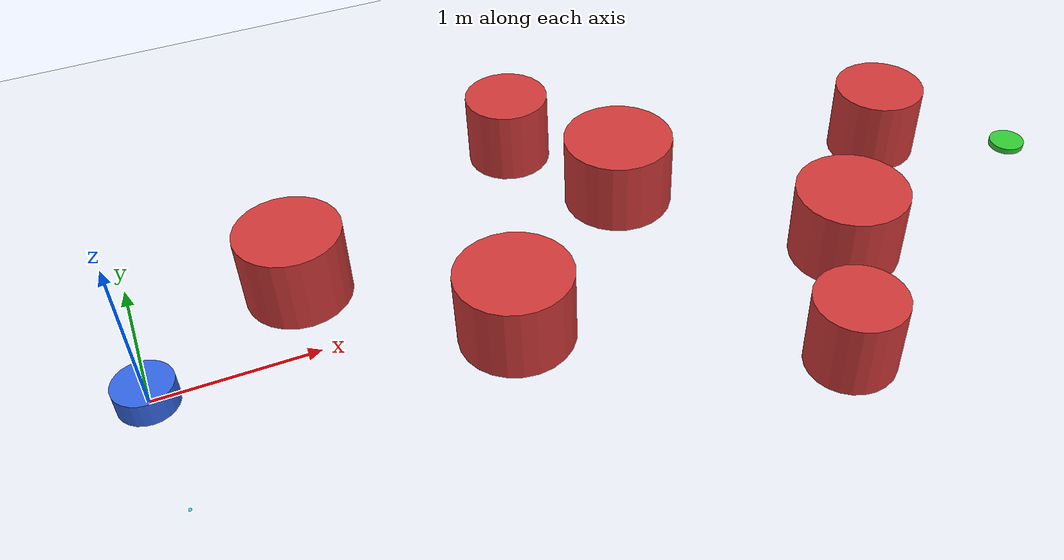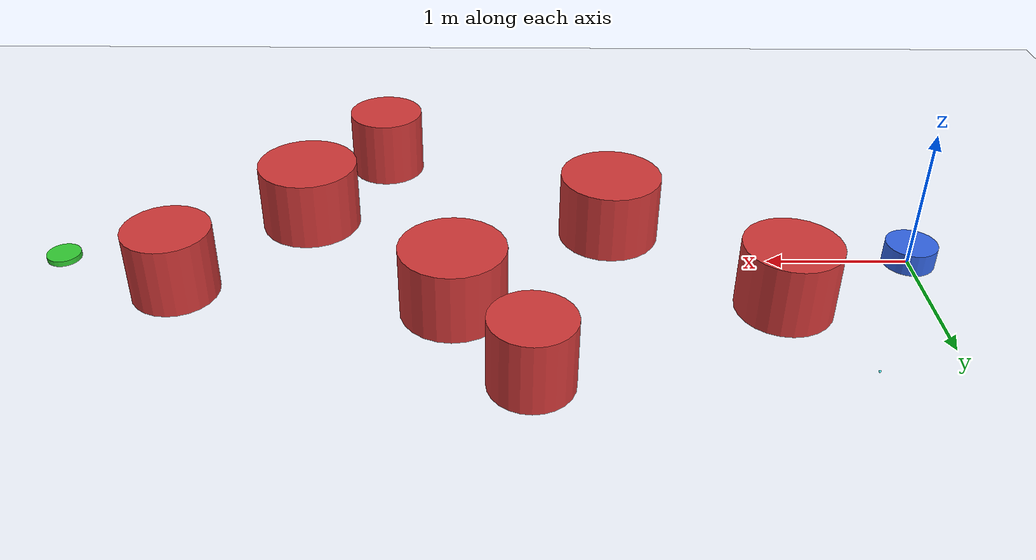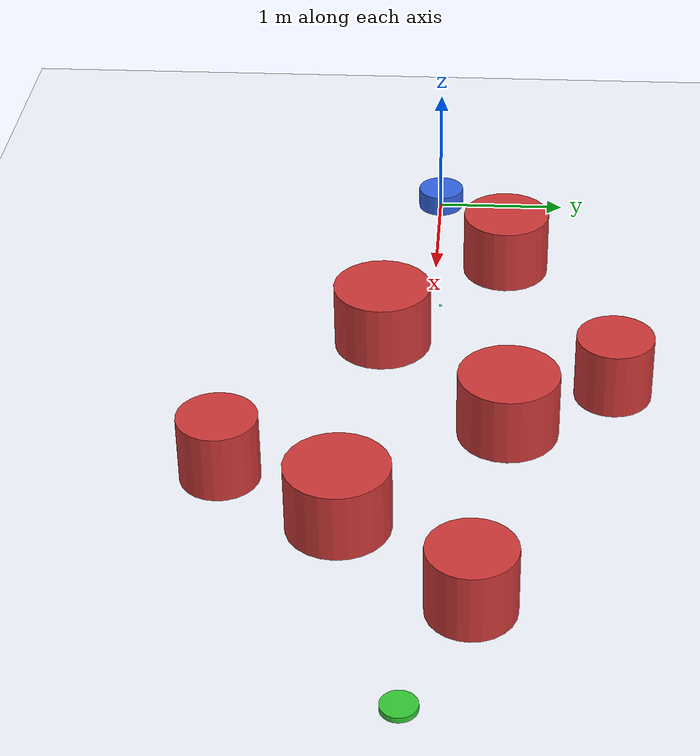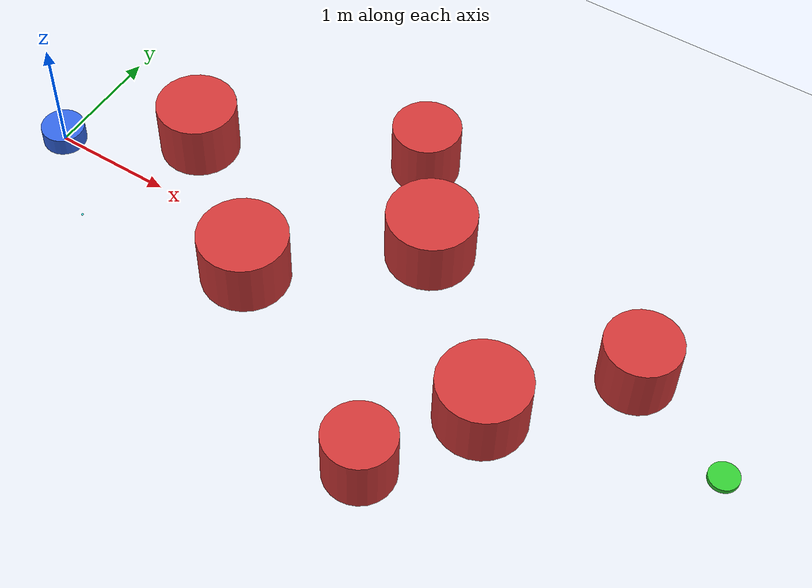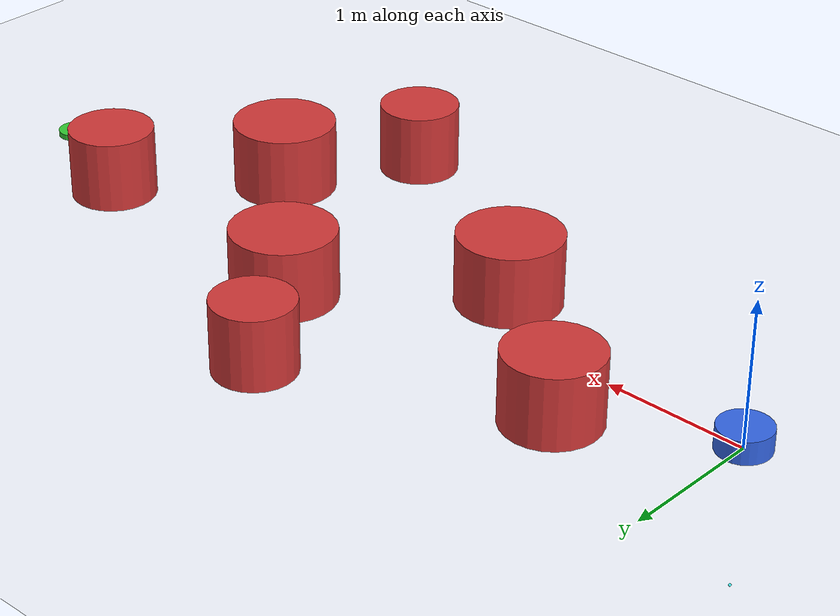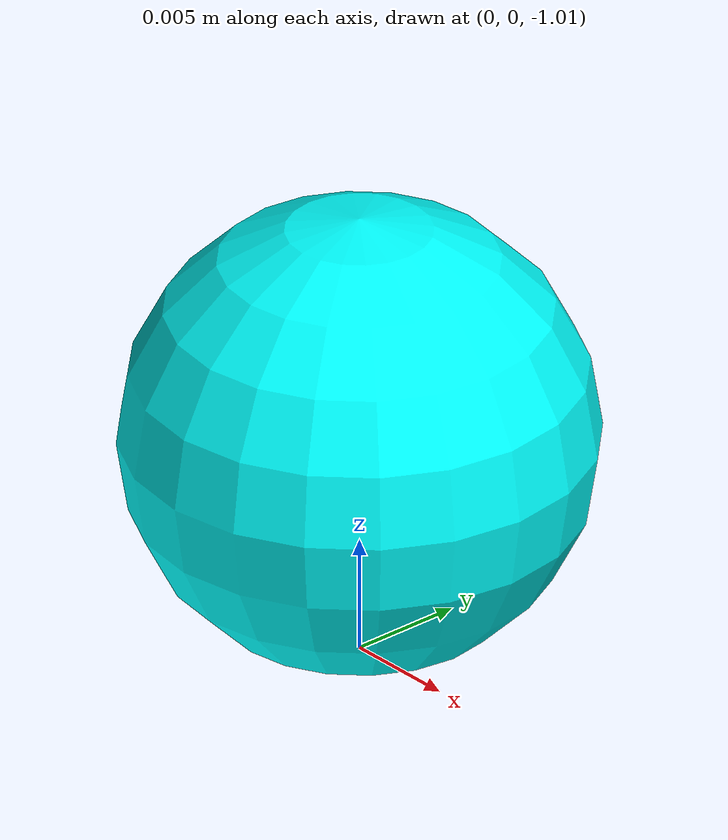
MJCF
<mujoco model="dense_scene">
  <option timestep="0.02" gravity="0 0 -9.81"/>

  <visual>
    <headlight ambient="0.6 0.6 0.6" diffuse="0.8 0.8 0.8" specular="0.2 0.2 0.2"/>
  </visual>

  <worldbody>
    <!-- 地面 -->
    <geom name="floor" type="plane" size="8 8 0.1" rgba="0.94 0.94 0.94 1"/>

    <!-- 机器人：先继续用一个蓝色圆柱占位 -->
    <body name="robot" pos="0 0 0.08">
      <freejoint/>
      <geom name="robot_body" type="cylinder" size="0.18 0.08" rgba="0.2 0.4 0.9 1"/>
    </body>

    <!-- goal 标记 -->
    <body name="goal_marker" pos="6.0 0.0 0.02">
      <geom type="cylinder" size="0.12 0.02" rgba="0.2 0.8 0.2 1"/>
    </body>

    <!-- dense 场景障碍物：把二维圆障碍翻成竖直圆柱 -->
    <body name="obs1" pos="1.0 0.55 0.25">
      <geom type="cylinder" size="0.33 0.25" rgba="0.82 0.22 0.22 1"/>
    </body>

    <body name="obs2" pos="2.1 -0.35 0.25">
      <geom type="cylinder" size="0.36 0.25" rgba="0.82 0.22 0.22 1"/>
    </body>

    <body name="obs3" pos="3.2 0.60 0.25">
      <geom type="cylinder" size="0.36 0.25" rgba="0.82 0.22 0.22 1"/>
    </body>

    <body name="obs4" pos="4.3 -0.50 0.25">
      <geom type="cylinder" size="0.36 0.25" rgba="0.82 0.22 0.22 1"/>
    </body>

    <body name="obs5" pos="5.1 0.40 0.25">
      <geom type="cylinder" size="0.30 0.25" rgba="0.82 0.22 0.22 1"/>
    </body>

    <body name="obs6" pos="2.7 1.35 0.25">
      <geom type="cylinder" size="0.28 0.25" rgba="0.82 0.22 0.22 1"/>
    </body>

    <body name="obs7" pos="3.8 -1.35 0.25">
      <geom type="cylinder" size="0.28 0.25" rgba="0.82 0.22 0.22 1"/>
    </body>

<body name="pred_best_0" mocap="true" pos="0 0 -1">
    <geom type="sphere" size="0.0100" rgba="0.00 1.00 1.00 1.00" contype="0" conaffinity="0"/>
</body>
<body name="pred_best_1" mocap="true" pos="0 0 -1">
    <geom type="sphere" size="0.0100" rgba="0.00 1.00 1.00 1.00" contype="0" conaffinity="0"/>
</body>
<body name="pred_best_2" mocap="true" pos="0 0 -1">
    <geom type="sphere" size="0.0100" rgba="0.00 1.00 1.00 1.00" contype="0" conaffinity="0"/>
</body>
<body name="pred_best_3" mocap="true" pos="0 0 -1">
    <geom type="sphere" size="0.0100" rgba="0.00 1.00 1.00 1.00" contype="0" conaffinity="0"/>
</body>
<body name="pred_best_4" mocap="true" pos="0 0 -1">
    <geom type="sphere" size="0.0100" rgba="0.00 1.00 1.00 1.00" contype="0" conaffinity="0"/>
</body>
<body name="pred_best_5" mocap="true" pos="0 0 -1">
    <geom type="sphere" size="0.0100" rgba="0.00 1.00 1.00 1.00" contype="0" conaffinity="0"/>
</body>
<body name="pred_best_6" mocap="true" pos="0 0 -1">
    <geom type="sphere" size="0.0100" rgba="0.00 1.00 1.00 1.00" contype="0" conaffinity="0"/>
</body>
<body name="pred_best_7" mocap="true" pos="0 0 -1">
    <geom type="sphere" size="0.0100" rgba="0.00 1.00 1.00 1.00" contype="0" conaffinity="0"/>
</body>
<body name="pred_best_8" mocap="true" pos="0 0 -1">
    <geom type="sphere" size="0.0100" rgba="0.00 1.00 1.00 1.00" contype="0" conaffinity="0"/>
</body>
<body name="pred_best_9" mocap="true" pos="0 0 -1">
    <geom type="sphere" size="0.0100" rgba="0.00 1.00 1.00 1.00" contype="0" conaffinity="0"/>
</body>
<body name="pred_best_10" mocap="true" pos="0 0 -1">
    <geom type="sphere" size="0.0100" rgba="0.00 1.00 1.00 1.00" contype="0" conaffinity="0"/>
</body>
<body name="pred_best_11" mocap="true" pos="0 0 -1">
    <geom type="sphere" size="0.0100" rgba="0.00 1.00 1.00 1.00" contype="0" conaffinity="0"/>
</body>
<body name="pred_best_12" mocap="true" pos="0 0 -1">
    <geom type="sphere" size="0.0100" rgba="0.00 1.00 1.00 1.00" contype="0" conaffinity="0"/>
</body>
<body name="pred_best_13" mocap="true" pos="0 0 -1">
    <geom type="sphere" size="0.0100" rgba="0.00 1.00 1.00 1.00" contype="0" conaffinity="0"/>
</body>
<body name="pred_best_14" mocap="true" pos="0 0 -1">
    <geom type="sphere" size="0.0100" rgba="0.00 1.00 1.00 1.00" contype="0" conaffinity="0"/>
</body>
<body name="pred_best_15" mocap="true" pos="0 0 -1">
    <geom type="sphere" size="0.0100" rgba="0.00 1.00 1.00 1.00" contype="0" conaffinity="0"/>
</body>
<body name="pred_best_16" mocap="true" pos="0 0 -1">
    <geom type="sphere" size="0.0100" rgba="0.00 1.00 1.00 1.00" contype="0" conaffinity="0"/>
</body>
<body name="pred_best_17" mocap="true" pos="0 0 -1">
    <geom type="sphere" size="0.0100" rgba="0.00 1.00 1.00 1.00" contype="0" conaffinity="0"/>
</body>
<body name="pred_best_18" mocap="true" pos="0 0 -1">
    <geom type="sphere" size="0.0100" rgba="0.00 1.00 1.00 1.00" contype="0" conaffinity="0"/>
</body>
<body name="pred_best_19" mocap="true" pos="0 0 -1">
    <geom type="sphere" size="0.0100" rgba="0.00 1.00 1.00 1.00" contype="0" conaffinity="0"/>
</body>
<body name="pred_best_20" mocap="true" pos="0 0 -1">
    <geom type="sphere" size="0.0100" rgba="0.00 1.00 1.00 1.00" contype="0" conaffinity="0"/>
</body>
<body name="pred_best_21" mocap="true" pos="0 0 -1">
    <geom type="sphere" size="0.0100" rgba="0.00 1.00 1.00 1.00" contype="0" conaffinity="0"/>
</body>
<body name="pred_best_22" mocap="true" pos="0 0 -1">
    <geom type="sphere" size="0.0100" rgba="0.00 1.00 1.00 1.00" contype="0" conaffinity="0"/>
</body>
<body name="pred_best_23" mocap="true" pos="0 0 -1">
    <geom type="sphere" size="0.0100" rgba="0.00 1.00 1.00 1.00" contype="0" conaffinity="0"/>
</body>
<body name="pred_best_24" mocap="true" pos="0 0 -1">
    <geom type="sphere" size="0.0100" rgba="0.00 1.00 1.00 1.00" contype="0" conaffinity="0"/>
</body>
<body name="pred_best_25" mocap="true" pos="0 0 -1">
    <geom type="sphere" size="0.0100" rgba="0.00 1.00 1.00 1.00" contype="0" conaffinity="0"/>
</body>
<body name="pred_best_26" mocap="true" pos="0 0 -1">
    <geom type="sphere" size="0.0100" rgba="0.00 1.00 1.00 1.00" contype="0" conaffinity="0"/>
</body>
<body name="pred_best_27" mocap="true" pos="0 0 -1">
    <geom type="sphere" size="0.0100" rgba="0.00 1.00 1.00 1.00" contype="0" conaffinity="0"/>
</body>
<body name="pred_best_28" mocap="true" pos="0 0 -1">
    <geom type="sphere" size="0.0100" rgba="0.00 1.00 1.00 1.00" contype="0" conaffinity="0"/>
</body>
<body name="pred_best_29" mocap="true" pos="0 0 -1">
    <geom type="sphere" size="0.0100" rgba="0.00 1.00 1.00 1.00" contype="0" conaffinity="0"/>
</body>
<body name="pred_best_30" mocap="true" pos="0 0 -1">
    <geom type="sphere" size="0.0100" rgba="0.00 1.00 1.00 1.00" contype="0" conaffinity="0"/>
</body>
<body name="pred_best_31" mocap="true" pos="0 0 -1">
    <geom type="sphere" size="0.0100" rgba="0.00 1.00 1.00 1.00" contype="0" conaffinity="0"/>
</body>
<body name="pred_best_32" mocap="true" pos="0 0 -1">
    <geom type="sphere" size="0.0100" rgba="0.00 1.00 1.00 1.00" contype="0" conaffinity="0"/>
</body>
<body name="pred_best_33" mocap="true" pos="0 0 -1">
    <geom type="sphere" size="0.0100" rgba="0.00 1.00 1.00 1.00" contype="0" conaffinity="0"/>
</body>
<body name="pred_best_34" mocap="true" pos="0 0 -1">
    <geom type="sphere" size="0.0100" rgba="0.00 1.00 1.00 1.00" contype="0" conaffinity="0"/>
</body>
<body name="pred_best_35" mocap="true" pos="0 0 -1">
    <geom type="sphere" size="0.0100" rgba="0.00 1.00 1.00 1.00" contype="0" conaffinity="0"/>
</body>
<body name="pred_best_36" mocap="true" pos="0 0 -1">
    <geom type="sphere" size="0.0100" rgba="0.00 1.00 1.00 1.00" contype="0" conaffinity="0"/>
</body>
<body name="pred_best_37" mocap="true" pos="0 0 -1">
    <geom type="sphere" size="0.0100" rgba="0.00 1.00 1.00 1.00" contype="0" conaffinity="0"/>
</body>
<body name="pred_best_38" mocap="true" pos="0 0 -1">
    <geom type="sphere" size="0.0100" rgba="0.00 1.00 1.00 1.00" contype="0" conaffinity="0"/>
</body>
<body name="pred_best_39" mocap="true" pos="0 0 -1">
    <geom type="sphere" size="0.0100" rgba="0.00 1.00 1.00 1.00" contype="0" conaffinity="0"/>
</body>

<body name="pred_aux0_0" mocap="true" pos="0 0 -1">
    <geom type="sphere" size="0.0075" rgba="1.00 0.55 0.05 0.95" contype="0" conaffinity="0"/>
</body>
<body name="pred_aux0_1" mocap="true" pos="0 0 -1">
    <geom type="sphere" size="0.0075" rgba="1.00 0.55 0.05 0.95" contype="0" conaffinity="0"/>
</body>
<body name="pred_aux0_2" mocap="true" pos="0 0 -1">
    <geom type="sphere" size="0.0075" rgba="1.00 0.55 0.05 0.95" contype="0" conaffinity="0"/>
</body>
<body name="pred_aux0_3" mocap="true" pos="0 0 -1">
    <geom type="sphere" size="0.0075" rgba="1.00 0.55 0.05 0.95" contype="0" conaffinity="0"/>
</body>
<body name="pred_aux0_4" mocap="true" pos="0 0 -1">
    <geom type="sphere" size="0.0075" rgba="1.00 0.55 0.05 0.95" contype="0" conaffinity="0"/>
</body>
<body name="pred_aux0_5" mocap="true" pos="0 0 -1">
    <geom type="sphere" size="0.0075" rgba="1.00 0.55 0.05 0.95" contype="0" conaffinity="0"/>
</body>
<body name="pred_aux0_6" mocap="true" pos="0 0 -1">
    <geom type="sphere" size="0.0075" rgba="1.00 0.55 0.05 0.95" contype="0" conaffinity="0"/>
</body>
<body name="pred_aux0_7" mocap="true" pos="0 0 -1">
    <geom type="sphere" size="0.0075" rgba="1.00 0.55 0.05 0.95" contype="0" conaffinity="0"/>
</body>
<body name="pred_aux0_8" mocap="true" pos="0 0 -1">
    <geom type="sphere" size="0.0075" rgba="1.00 0.55 0.05 0.95" contype="0" conaffinity="0"/>
</body>
<body name="pred_aux0_9" mocap="true" pos="0 0 -1">
    <geom type="sphere" size="0.0075" rgba="1.00 0.55 0.05 0.95" contype="0" conaffinity="0"/>
</body>
<body name="pred_aux0_10" mocap="true" pos="0 0 -1">
    <geom type="sphere" size="0.0075" rgba="1.00 0.55 0.05 0.95" contype="0" conaffinity="0"/>
</body>
<body name="pred_aux0_11" mocap="true" pos="0 0 -1">
    <geom type="sphere" size="0.0075" rgba="1.00 0.55 0.05 0.95" contype="0" conaffinity="0"/>
</body>
<body name="pred_aux0_12" mocap="true" pos="0 0 -1">
    <geom type="sphere" size="0.0075" rgba="1.00 0.55 0.05 0.95" contype="0" conaffinity="0"/>
</body>
<body name="pred_aux0_13" mocap="true" pos="0 0 -1">
    <geom type="sphere" size="0.0075" rgba="1.00 0.55 0.05 0.95" contype="0" conaffinity="0"/>
</body>
<body name="pred_aux0_14" mocap="true" pos="0 0 -1">
    <geom type="sphere" size="0.0075" rgba="1.00 0.55 0.05 0.95" contype="0" conaffinity="0"/>
</body>
<body name="pred_aux0_15" mocap="true" pos="0 0 -1">
    <geom type="sphere" size="0.0075" rgba="1.00 0.55 0.05 0.95" contype="0" conaffinity="0"/>
</body>
<body name="pred_aux0_16" mocap="true" pos="0 0 -1">
    <geom type="sphere" size="0.0075" rgba="1.00 0.55 0.05 0.95" contype="0" conaffinity="0"/>
</body>
<body name="pred_aux0_17" mocap="true" pos="0 0 -1">
    <geom type="sphere" size="0.0075" rgba="1.00 0.55 0.05 0.95" contype="0" conaffinity="0"/>
</body>
<body name="pred_aux0_18" mocap="true" pos="0 0 -1">
    <geom type="sphere" size="0.0075" rgba="1.00 0.55 0.05 0.95" contype="0" conaffinity="0"/>
</body>
<body name="pred_aux0_19" mocap="true" pos="0 0 -1">
    <geom type="sphere" size="0.0075" rgba="1.00 0.55 0.05 0.95" contype="0" conaffinity="0"/>
</body>

<body name="pred_aux1_0" mocap="true" pos="0 0 -1">
    <geom type="sphere" size="0.0075" rgba="0.95 0.15 0.95 0.95" contype="0" conaffinity="0"/>
</body>
<body name="pred_aux1_1" mocap="true" pos="0 0 -1">
    <geom type="sphere" size="0.0075" rgba="0.95 0.15 0.95 0.95" contype="0" conaffinity="0"/>
</body>
<body name="pred_aux1_2" mocap="true" pos="0 0 -1">
    <geom type="sphere" size="0.0075" rgba="0.95 0.15 0.95 0.95" contype="0" conaffinity="0"/>
</body>
<body name="pred_aux1_3" mocap="true" pos="0 0 -1">
    <geom type="sphere" size="0.0075" rgba="0.95 0.15 0.95 0.95" contype="0" conaffinity="0"/>
</body>
<body name="pred_aux1_4" mocap="true" pos="0 0 -1">
    <geom type="sphere" size="0.0075" rgba="0.95 0.15 0.95 0.95" contype="0" conaffinity="0"/>
</body>
<body name="pred_aux1_5" mocap="true" pos="0 0 -1">
    <geom type="sphere" size="0.0075" rgba="0.95 0.15 0.95 0.95" contype="0" conaffinity="0"/>
</body>
<body name="pred_aux1_6" mocap="true" pos="0 0 -1">
    <geom type="sphere" size="0.0075" rgba="0.95 0.15 0.95 0.95" contype="0" conaffinity="0"/>
</body>
<body name="pred_aux1_7" mocap="true" pos="0 0 -1">
    <geom type="sphere" size="0.0075" rgba="0.95 0.15 0.95 0.95" contype="0" conaffinity="0"/>
</body>
<body name="pred_aux1_8" mocap="true" pos="0 0 -1">
    <geom type="sphere" size="0.0075" rgba="0.95 0.15 0.95 0.95" contype="0" conaffinity="0"/>
</body>
<body name="pred_aux1_9" mocap="true" pos="0 0 -1">
    <geom type="sphere" size="0.0075" rgba="0.95 0.15 0.95 0.95" contype="0" conaffinity="0"/>
</body>
<body name="pred_aux1_10" mocap="true" pos="0 0 -1">
    <geom type="sphere" size="0.0075" rgba="0.95 0.15 0.95 0.95" contype="0" conaffinity="0"/>
</body>
<body name="pred_aux1_11" mocap="true" pos="0 0 -1">
    <geom type="sphere" size="0.0075" rgba="0.95 0.15 0.95 0.95" contype="0" conaffinity="0"/>
</body>
<body name="pred_aux1_12" mocap="true" pos="0 0 -1">
    <geom type="sphere" size="0.0075" rgba="0.95 0.15 0.95 0.95" contype="0" conaffinity="0"/>
</body>
<body name="pred_aux1_13" mocap="true" pos="0 0 -1">
    <geom type="sphere" size="0.0075" rgba="0.95 0.15 0.95 0.95" contype="0" conaffinity="0"/>
</body>
<body name="pred_aux1_14" mocap="true" pos="0 0 -1">
    <geom type="sphere" size="0.0075" rgba="0.95 0.15 0.95 0.95" contype="0" conaffinity="0"/>
</body>
<body name="pred_aux1_15" mocap="true" pos="0 0 -1">
    <geom type="sphere" size="0.0075" rgba="0.95 0.15 0.95 0.95" contype="0" conaffinity="0"/>
</body>
<body name="pred_aux1_16" mocap="true" pos="0 0 -1">
    <geom type="sphere" size="0.0075" rgba="0.95 0.15 0.95 0.95" contype="0" conaffinity="0"/>
</body>
<body name="pred_aux1_17" mocap="true" pos="0 0 -1">
    <geom type="sphere" size="0.0075" rgba="0.95 0.15 0.95 0.95" contype="0" conaffinity="0"/>
</body>
<body name="pred_aux1_18" mocap="true" pos="0 0 -1">
    <geom type="sphere" size="0.0075" rgba="0.95 0.15 0.95 0.95" contype="0" conaffinity="0"/>
</body>
<body name="pred_aux1_19" mocap="true" pos="0 0 -1">
    <geom type="sphere" size="0.0075" rgba="0.95 0.15 0.95 0.95" contype="0" conaffinity="0"/>
</body>
  </worldbody>
</mujoco>
